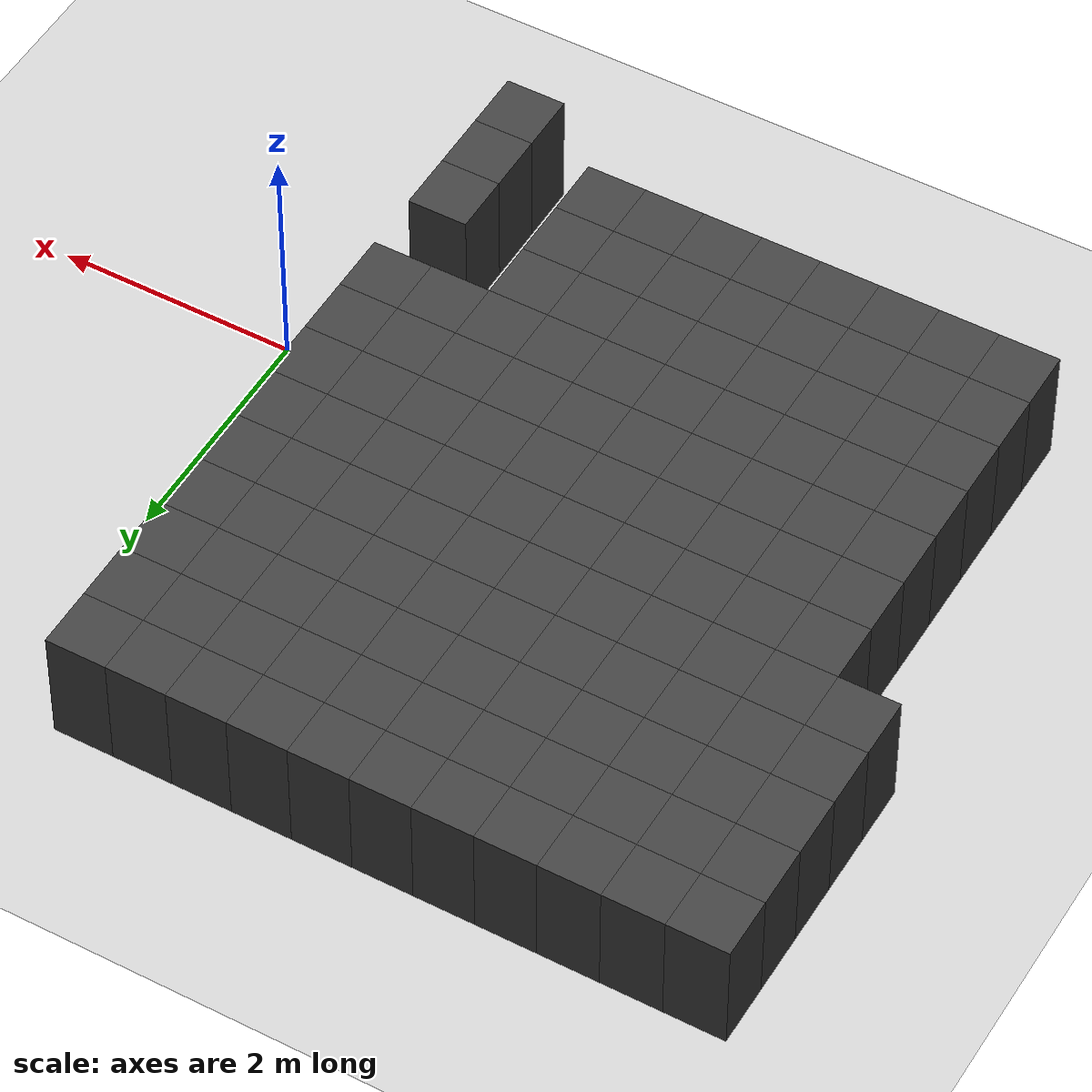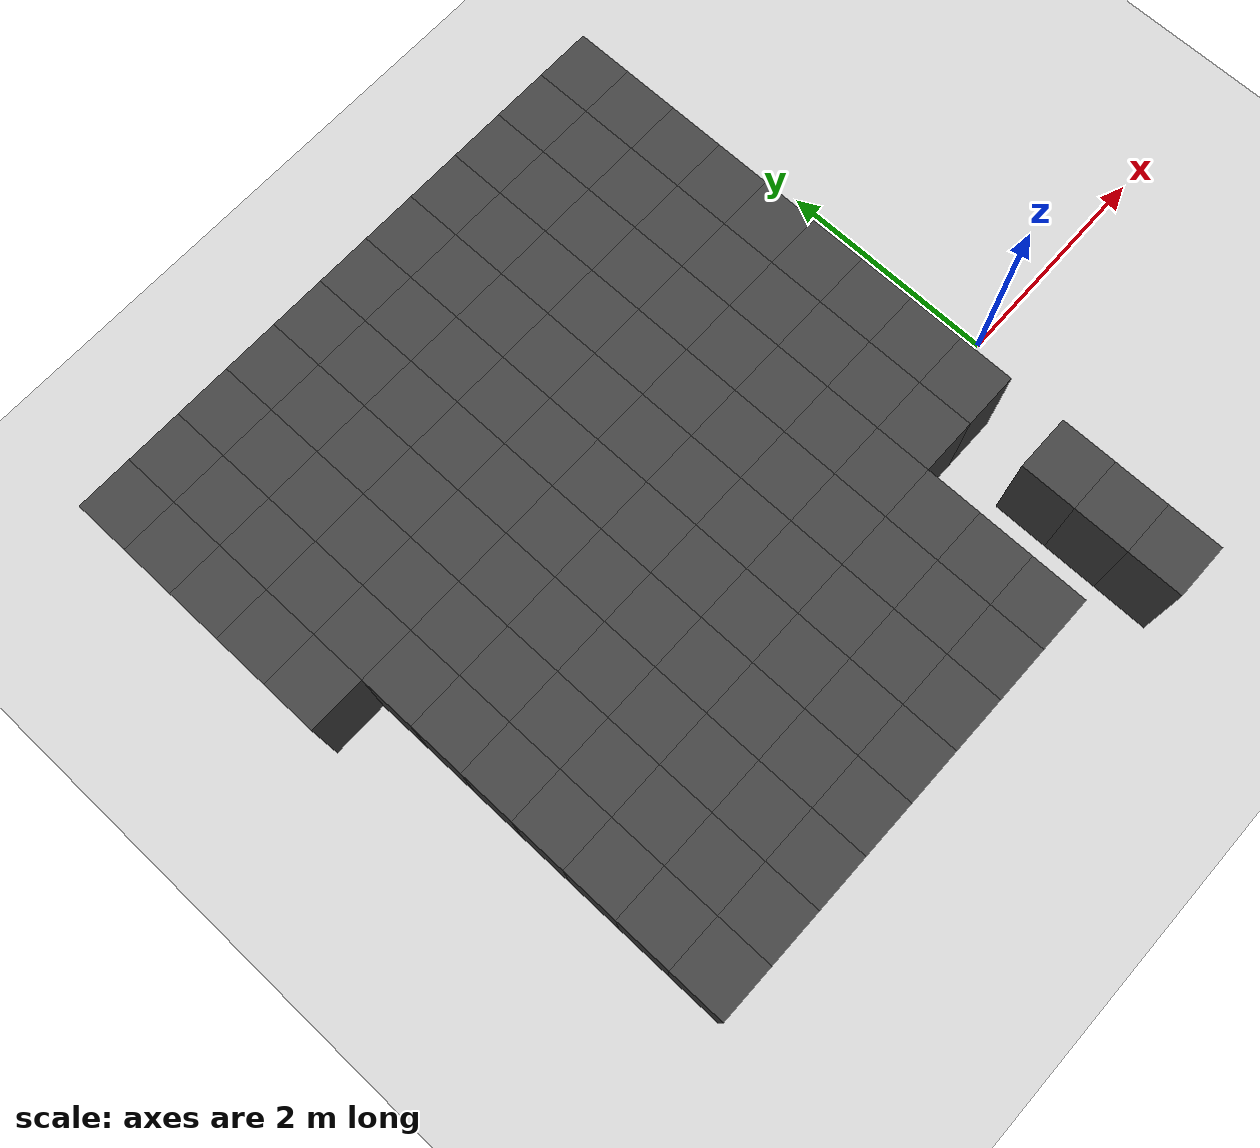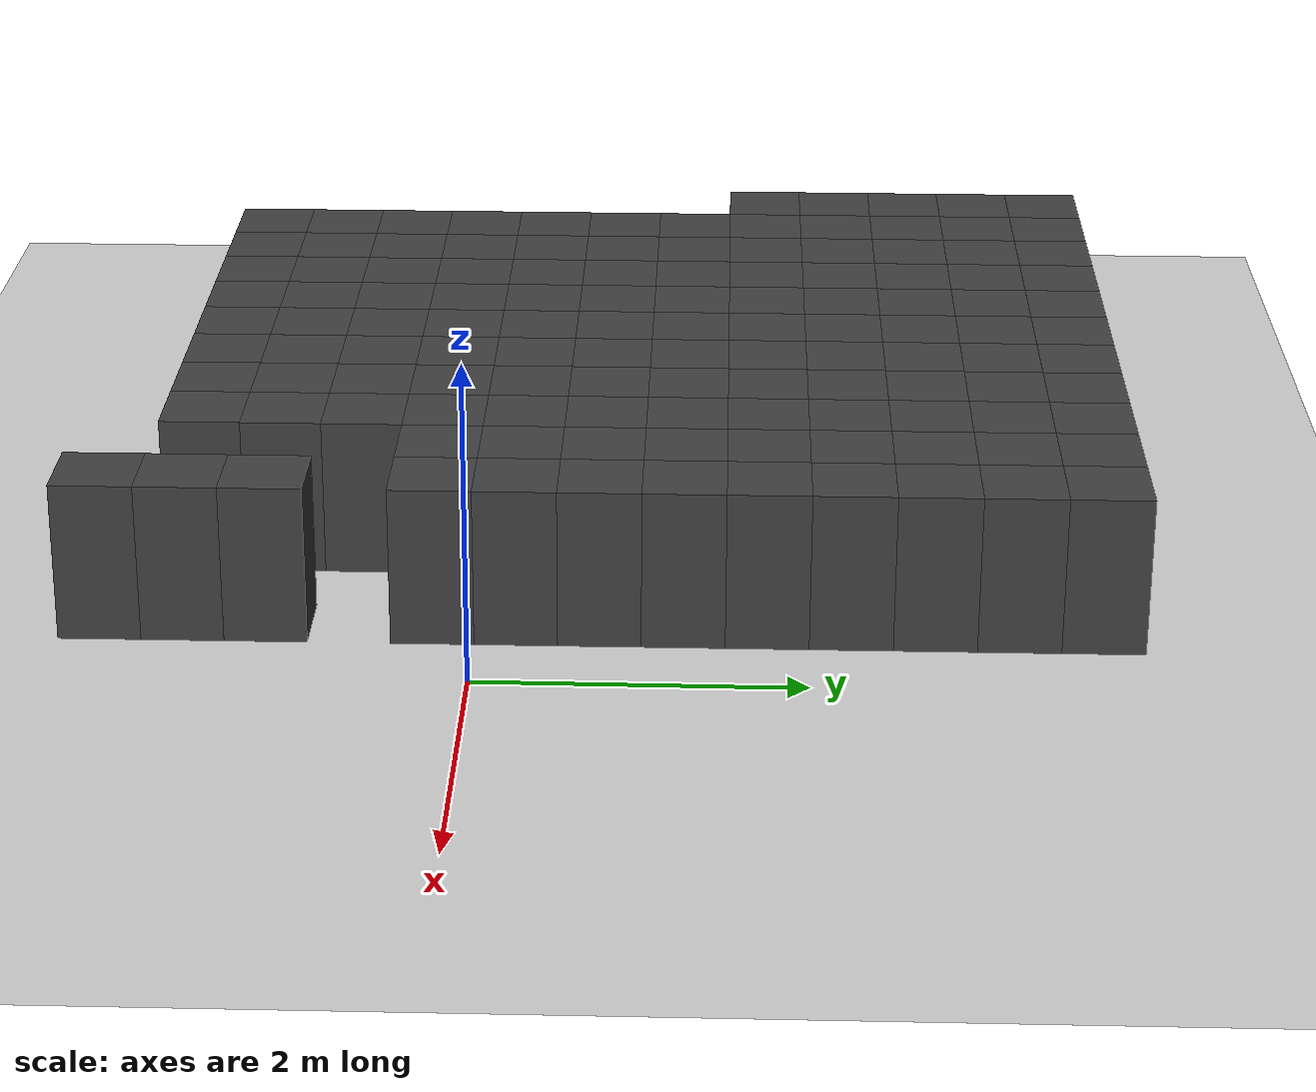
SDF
<sdf version="1.7">
 <world name="map_14547">
  <model name="ground_plane">
   <static>true</static>
   <link name="link">
    <collision name="collision">
     <geometry><plane><normal>0 0 1</normal><size>200 200</size></plane></geometry>
    </collision>
    <visual name="visual">
     <geometry><plane><normal>0 0 1</normal><size>200 200</size></plane></geometry>
     <material><ambient>0.8 0.8 0.8 1</ambient><diffuse>0.8 0.8 0.8 1</diffuse></material>
    </visual>
   </link>
  </model>
  <model name="maze_environment">
   <static>true</static>
   <link name="wall_535">
    <pose>-5.750 3.750 0.500 0 0 0</pose>
    <collision name="col"><geometry><box><size>0.5 0.5 1.0</size></box></geometry></collision>
    <visual name="vis">
     <geometry><box><size>0.5 0.5 1.0</size></box></geometry>
     <material><ambient>0.15 0.15 0.15 1</ambient><diffuse>0.25 0.25 0.25 1</diffuse></material>
    </visual>
   </link>
   <link name="wall_536">
    <pose>-5.250 3.750 0.500 0 0 0</pose>
    <collision name="col"><geometry><box><size>0.5 0.5 1.0</size></box></geometry></collision>
    <visual name="vis">
     <geometry><box><size>0.5 0.5 1.0</size></box></geometry>
     <material><ambient>0.15 0.15 0.15 1</ambient><diffuse>0.25 0.25 0.25 1</diffuse></material>
    </visual>
   </link>
   <link name="wall_537">
    <pose>-4.750 3.750 0.500 0 0 0</pose>
    <collision name="col"><geometry><box><size>0.5 0.5 1.0</size></box></geometry></collision>
    <visual name="vis">
     <geometry><box><size>0.5 0.5 1.0</size></box></geometry>
     <material><ambient>0.15 0.15 0.15 1</ambient><diffuse>0.25 0.25 0.25 1</diffuse></material>
    </visual>
   </link>
   <link name="wall_538">
    <pose>-4.250 3.750 0.500 0 0 0</pose>
    <collision name="col"><geometry><box><size>0.5 0.5 1.0</size></box></geometry></collision>
    <visual name="vis">
     <geometry><box><size>0.5 0.5 1.0</size></box></geometry>
     <material><ambient>0.15 0.15 0.15 1</ambient><diffuse>0.25 0.25 0.25 1</diffuse></material>
    </visual>
   </link>
   <link name="wall_539">
    <pose>-3.750 3.750 0.500 0 0 0</pose>
    <collision name="col"><geometry><box><size>0.5 0.5 1.0</size></box></geometry></collision>
    <visual name="vis">
     <geometry><box><size>0.5 0.5 1.0</size></box></geometry>
     <material><ambient>0.15 0.15 0.15 1</ambient><diffuse>0.25 0.25 0.25 1</diffuse></material>
    </visual>
   </link>
   <link name="wall_540">
    <pose>-3.250 3.750 0.500 0 0 0</pose>
    <collision name="col"><geometry><box><size>0.5 0.5 1.0</size></box></geometry></collision>
    <visual name="vis">
     <geometry><box><size>0.5 0.5 1.0</size></box></geometry>
     <material><ambient>0.15 0.15 0.15 1</ambient><diffuse>0.25 0.25 0.25 1</diffuse></material>
    </visual>
   </link>
   <link name="wall_541">
    <pose>-2.750 3.750 0.500 0 0 0</pose>
    <collision name="col"><geometry><box><size>0.5 0.5 1.0</size></box></geometry></collision>
    <visual name="vis">
     <geometry><box><size>0.5 0.5 1.0</size></box></geometry>
     <material><ambient>0.15 0.15 0.15 1</ambient><diffuse>0.25 0.25 0.25 1</diffuse></material>
    </visual>
   </link>
   <link name="wall_542">
    <pose>-2.250 3.750 0.500 0 0 0</pose>
    <collision name="col"><geometry><box><size>0.5 0.5 1.0</size></box></geometry></collision>
    <visual name="vis">
     <geometry><box><size>0.5 0.5 1.0</size></box></geometry>
     <material><ambient>0.15 0.15 0.15 1</ambient><diffuse>0.25 0.25 0.25 1</diffuse></material>
    </visual>
   </link>
   <link name="wall_543">
    <pose>-1.750 3.750 0.500 0 0 0</pose>
    <collision name="col"><geometry><box><size>0.5 0.5 1.0</size></box></geometry></collision>
    <visual name="vis">
     <geometry><box><size>0.5 0.5 1.0</size></box></geometry>
     <material><ambient>0.15 0.15 0.15 1</ambient><diffuse>0.25 0.25 0.25 1</diffuse></material>
    </visual>
   </link>
   <link name="wall_544">
    <pose>-1.250 3.750 0.500 0 0 0</pose>
    <collision name="col"><geometry><box><size>0.5 0.5 1.0</size></box></geometry></collision>
    <visual name="vis">
     <geometry><box><size>0.5 0.5 1.0</size></box></geometry>
     <material><ambient>0.15 0.15 0.15 1</ambient><diffuse>0.25 0.25 0.25 1</diffuse></material>
    </visual>
   </link>
   <link name="wall_545">
    <pose>-0.750 3.750 0.500 0 0 0</pose>
    <collision name="col"><geometry><box><size>0.5 0.5 1.0</size></box></geometry></collision>
    <visual name="vis">
     <geometry><box><size>0.5 0.5 1.0</size></box></geometry>
     <material><ambient>0.15 0.15 0.15 1</ambient><diffuse>0.25 0.25 0.25 1</diffuse></material>
    </visual>
   </link>
   <link name="wall_584">
    <pose>-5.750 3.250 0.500 0 0 0</pose>
    <collision name="col"><geometry><box><size>0.5 0.5 1.0</size></box></geometry></collision>
    <visual name="vis">
     <geometry><box><size>0.5 0.5 1.0</size></box></geometry>
     <material><ambient>0.15 0.15 0.15 1</ambient><diffuse>0.25 0.25 0.25 1</diffuse></material>
    </visual>
   </link>
   <link name="wall_585">
    <pose>-5.250 3.250 0.500 0 0 0</pose>
    <collision name="col"><geometry><box><size>0.5 0.5 1.0</size></box></geometry></collision>
    <visual name="vis">
     <geometry><box><size>0.5 0.5 1.0</size></box></geometry>
     <material><ambient>0.15 0.15 0.15 1</ambient><diffuse>0.25 0.25 0.25 1</diffuse></material>
    </visual>
   </link>
   <link name="wall_586">
    <pose>-4.750 3.250 0.500 0 0 0</pose>
    <collision name="col"><geometry><box><size>0.5 0.5 1.0</size></box></geometry></collision>
    <visual name="vis">
     <geometry><box><size>0.5 0.5 1.0</size></box></geometry>
     <material><ambient>0.15 0.15 0.15 1</ambient><diffuse>0.25 0.25 0.25 1</diffuse></material>
    </visual>
   </link>
   <link name="wall_587">
    <pose>-4.250 3.250 0.500 0 0 0</pose>
    <collision name="col"><geometry><box><size>0.5 0.5 1.0</size></box></geometry></collision>
    <visual name="vis">
     <geometry><box><size>0.5 0.5 1.0</size></box></geometry>
     <material><ambient>0.15 0.15 0.15 1</ambient><diffuse>0.25 0.25 0.25 1</diffuse></material>
    </visual>
   </link>
   <link name="wall_588">
    <pose>-3.750 3.250 0.500 0 0 0</pose>
    <collision name="col"><geometry><box><size>0.5 0.5 1.0</size></box></geometry></collision>
    <visual name="vis">
     <geometry><box><size>0.5 0.5 1.0</size></box></geometry>
     <material><ambient>0.15 0.15 0.15 1</ambient><diffuse>0.25 0.25 0.25 1</diffuse></material>
    </visual>
   </link>
   <link name="wall_589">
    <pose>-3.250 3.250 0.500 0 0 0</pose>
    <collision name="col"><geometry><box><size>0.5 0.5 1.0</size></box></geometry></collision>
    <visual name="vis">
     <geometry><box><size>0.5 0.5 1.0</size></box></geometry>
     <material><ambient>0.15 0.15 0.15 1</ambient><diffuse>0.25 0.25 0.25 1</diffuse></material>
    </visual>
   </link>
   <link name="wall_590">
    <pose>-2.750 3.250 0.500 0 0 0</pose>
    <collision name="col"><geometry><box><size>0.5 0.5 1.0</size></box></geometry></collision>
    <visual name="vis">
     <geometry><box><size>0.5 0.5 1.0</size></box></geometry>
     <material><ambient>0.15 0.15 0.15 1</ambient><diffuse>0.25 0.25 0.25 1</diffuse></material>
    </visual>
   </link>
   <link name="wall_591">
    <pose>-2.250 3.250 0.500 0 0 0</pose>
    <collision name="col"><geometry><box><size>0.5 0.5 1.0</size></box></geometry></collision>
    <visual name="vis">
     <geometry><box><size>0.5 0.5 1.0</size></box></geometry>
     <material><ambient>0.15 0.15 0.15 1</ambient><diffuse>0.25 0.25 0.25 1</diffuse></material>
    </visual>
   </link>
   <link name="wall_592">
    <pose>-1.750 3.250 0.500 0 0 0</pose>
    <collision name="col"><geometry><box><size>0.5 0.5 1.0</size></box></geometry></collision>
    <visual name="vis">
     <geometry><box><size>0.5 0.5 1.0</size></box></geometry>
     <material><ambient>0.15 0.15 0.15 1</ambient><diffuse>0.25 0.25 0.25 1</diffuse></material>
    </visual>
   </link>
   <link name="wall_593">
    <pose>-1.250 3.250 0.500 0 0 0</pose>
    <collision name="col"><geometry><box><size>0.5 0.5 1.0</size></box></geometry></collision>
    <visual name="vis">
     <geometry><box><size>0.5 0.5 1.0</size></box></geometry>
     <material><ambient>0.15 0.15 0.15 1</ambient><diffuse>0.25 0.25 0.25 1</diffuse></material>
    </visual>
   </link>
   <link name="wall_594">
    <pose>-0.750 3.250 0.500 0 0 0</pose>
    <collision name="col"><geometry><box><size>0.5 0.5 1.0</size></box></geometry></collision>
    <visual name="vis">
     <geometry><box><size>0.5 0.5 1.0</size></box></geometry>
     <material><ambient>0.15 0.15 0.15 1</ambient><diffuse>0.25 0.25 0.25 1</diffuse></material>
    </visual>
   </link>
   <link name="wall_628">
    <pose>-5.750 2.750 0.500 0 0 0</pose>
    <collision name="col"><geometry><box><size>0.5 0.5 1.0</size></box></geometry></collision>
    <visual name="vis">
     <geometry><box><size>0.5 0.5 1.0</size></box></geometry>
     <material><ambient>0.15 0.15 0.15 1</ambient><diffuse>0.25 0.25 0.25 1</diffuse></material>
    </visual>
   </link>
   <link name="wall_629">
    <pose>-5.250 2.750 0.500 0 0 0</pose>
    <collision name="col"><geometry><box><size>0.5 0.5 1.0</size></box></geometry></collision>
    <visual name="vis">
     <geometry><box><size>0.5 0.5 1.0</size></box></geometry>
     <material><ambient>0.15 0.15 0.15 1</ambient><diffuse>0.25 0.25 0.25 1</diffuse></material>
    </visual>
   </link>
   <link name="wall_630">
    <pose>-4.750 2.750 0.500 0 0 0</pose>
    <collision name="col"><geometry><box><size>0.5 0.5 1.0</size></box></geometry></collision>
    <visual name="vis">
     <geometry><box><size>0.5 0.5 1.0</size></box></geometry>
     <material><ambient>0.15 0.15 0.15 1</ambient><diffuse>0.25 0.25 0.25 1</diffuse></material>
    </visual>
   </link>
   <link name="wall_631">
    <pose>-4.250 2.750 0.500 0 0 0</pose>
    <collision name="col"><geometry><box><size>0.5 0.5 1.0</size></box></geometry></collision>
    <visual name="vis">
     <geometry><box><size>0.5 0.5 1.0</size></box></geometry>
     <material><ambient>0.15 0.15 0.15 1</ambient><diffuse>0.25 0.25 0.25 1</diffuse></material>
    </visual>
   </link>
   <link name="wall_632">
    <pose>-3.750 2.750 0.500 0 0 0</pose>
    <collision name="col"><geometry><box><size>0.5 0.5 1.0</size></box></geometry></collision>
    <visual name="vis">
     <geometry><box><size>0.5 0.5 1.0</size></box></geometry>
     <material><ambient>0.15 0.15 0.15 1</ambient><diffuse>0.25 0.25 0.25 1</diffuse></material>
    </visual>
   </link>
   <link name="wall_633">
    <pose>-3.250 2.750 0.500 0 0 0</pose>
    <collision name="col"><geometry><box><size>0.5 0.5 1.0</size></box></geometry></collision>
    <visual name="vis">
     <geometry><box><size>0.5 0.5 1.0</size></box></geometry>
     <material><ambient>0.15 0.15 0.15 1</ambient><diffuse>0.25 0.25 0.25 1</diffuse></material>
    </visual>
   </link>
   <link name="wall_634">
    <pose>-2.750 2.750 0.500 0 0 0</pose>
    <collision name="col"><geometry><box><size>0.5 0.5 1.0</size></box></geometry></collision>
    <visual name="vis">
     <geometry><box><size>0.5 0.5 1.0</size></box></geometry>
     <material><ambient>0.15 0.15 0.15 1</ambient><diffuse>0.25 0.25 0.25 1</diffuse></material>
    </visual>
   </link>
   <link name="wall_635">
    <pose>-2.250 2.750 0.500 0 0 0</pose>
    <collision name="col"><geometry><box><size>0.5 0.5 1.0</size></box></geometry></collision>
    <visual name="vis">
     <geometry><box><size>0.5 0.5 1.0</size></box></geometry>
     <material><ambient>0.15 0.15 0.15 1</ambient><diffuse>0.25 0.25 0.25 1</diffuse></material>
    </visual>
   </link>
   <link name="wall_636">
    <pose>-1.750 2.750 0.500 0 0 0</pose>
    <collision name="col"><geometry><box><size>0.5 0.5 1.0</size></box></geometry></collision>
    <visual name="vis">
     <geometry><box><size>0.5 0.5 1.0</size></box></geometry>
     <material><ambient>0.15 0.15 0.15 1</ambient><diffuse>0.25 0.25 0.25 1</diffuse></material>
    </visual>
   </link>
   <link name="wall_637">
    <pose>-1.250 2.750 0.500 0 0 0</pose>
    <collision name="col"><geometry><box><size>0.5 0.5 1.0</size></box></geometry></collision>
    <visual name="vis">
     <geometry><box><size>0.5 0.5 1.0</size></box></geometry>
     <material><ambient>0.15 0.15 0.15 1</ambient><diffuse>0.25 0.25 0.25 1</diffuse></material>
    </visual>
   </link>
   <link name="wall_638">
    <pose>-0.750 2.750 0.500 0 0 0</pose>
    <collision name="col"><geometry><box><size>0.5 0.5 1.0</size></box></geometry></collision>
    <visual name="vis">
     <geometry><box><size>0.5 0.5 1.0</size></box></geometry>
     <material><ambient>0.15 0.15 0.15 1</ambient><diffuse>0.25 0.25 0.25 1</diffuse></material>
    </visual>
   </link>
   <link name="wall_672">
    <pose>-5.750 2.250 0.500 0 0 0</pose>
    <collision name="col"><geometry><box><size>0.5 0.5 1.0</size></box></geometry></collision>
    <visual name="vis">
     <geometry><box><size>0.5 0.5 1.0</size></box></geometry>
     <material><ambient>0.15 0.15 0.15 1</ambient><diffuse>0.25 0.25 0.25 1</diffuse></material>
    </visual>
   </link>
   <link name="wall_673">
    <pose>-5.250 2.250 0.500 0 0 0</pose>
    <collision name="col"><geometry><box><size>0.5 0.5 1.0</size></box></geometry></collision>
    <visual name="vis">
     <geometry><box><size>0.5 0.5 1.0</size></box></geometry>
     <material><ambient>0.15 0.15 0.15 1</ambient><diffuse>0.25 0.25 0.25 1</diffuse></material>
    </visual>
   </link>
   <link name="wall_674">
    <pose>-4.750 2.250 0.500 0 0 0</pose>
    <collision name="col"><geometry><box><size>0.5 0.5 1.0</size></box></geometry></collision>
    <visual name="vis">
     <geometry><box><size>0.5 0.5 1.0</size></box></geometry>
     <material><ambient>0.15 0.15 0.15 1</ambient><diffuse>0.25 0.25 0.25 1</diffuse></material>
    </visual>
   </link>
   <link name="wall_675">
    <pose>-4.250 2.250 0.500 0 0 0</pose>
    <collision name="col"><geometry><box><size>0.5 0.5 1.0</size></box></geometry></collision>
    <visual name="vis">
     <geometry><box><size>0.5 0.5 1.0</size></box></geometry>
     <material><ambient>0.15 0.15 0.15 1</ambient><diffuse>0.25 0.25 0.25 1</diffuse></material>
    </visual>
   </link>
   <link name="wall_676">
    <pose>-3.750 2.250 0.500 0 0 0</pose>
    <collision name="col"><geometry><box><size>0.5 0.5 1.0</size></box></geometry></collision>
    <visual name="vis">
     <geometry><box><size>0.5 0.5 1.0</size></box></geometry>
     <material><ambient>0.15 0.15 0.15 1</ambient><diffuse>0.25 0.25 0.25 1</diffuse></material>
    </visual>
   </link>
   <link name="wall_677">
    <pose>-3.250 2.250 0.500 0 0 0</pose>
    <collision name="col"><geometry><box><size>0.5 0.5 1.0</size></box></geometry></collision>
    <visual name="vis">
     <geometry><box><size>0.5 0.5 1.0</size></box></geometry>
     <material><ambient>0.15 0.15 0.15 1</ambient><diffuse>0.25 0.25 0.25 1</diffuse></material>
    </visual>
   </link>
   <link name="wall_678">
    <pose>-2.750 2.250 0.500 0 0 0</pose>
    <collision name="col"><geometry><box><size>0.5 0.5 1.0</size></box></geometry></collision>
    <visual name="vis">
     <geometry><box><size>0.5 0.5 1.0</size></box></geometry>
     <material><ambient>0.15 0.15 0.15 1</ambient><diffuse>0.25 0.25 0.25 1</diffuse></material>
    </visual>
   </link>
   <link name="wall_679">
    <pose>-2.250 2.250 0.500 0 0 0</pose>
    <collision name="col"><geometry><box><size>0.5 0.5 1.0</size></box></geometry></collision>
    <visual name="vis">
     <geometry><box><size>0.5 0.5 1.0</size></box></geometry>
     <material><ambient>0.15 0.15 0.15 1</ambient><diffuse>0.25 0.25 0.25 1</diffuse></material>
    </visual>
   </link>
   <link name="wall_680">
    <pose>-1.750 2.250 0.500 0 0 0</pose>
    <collision name="col"><geometry><box><size>0.5 0.5 1.0</size></box></geometry></collision>
    <visual name="vis">
     <geometry><box><size>0.5 0.5 1.0</size></box></geometry>
     <material><ambient>0.15 0.15 0.15 1</ambient><diffuse>0.25 0.25 0.25 1</diffuse></material>
    </visual>
   </link>
   <link name="wall_681">
    <pose>-1.250 2.250 0.500 0 0 0</pose>
    <collision name="col"><geometry><box><size>0.5 0.5 1.0</size></box></geometry></collision>
    <visual name="vis">
     <geometry><box><size>0.5 0.5 1.0</size></box></geometry>
     <material><ambient>0.15 0.15 0.15 1</ambient><diffuse>0.25 0.25 0.25 1</diffuse></material>
    </visual>
   </link>
   <link name="wall_682">
    <pose>-0.750 2.250 0.500 0 0 0</pose>
    <collision name="col"><geometry><box><size>0.5 0.5 1.0</size></box></geometry></collision>
    <visual name="vis">
     <geometry><box><size>0.5 0.5 1.0</size></box></geometry>
     <material><ambient>0.15 0.15 0.15 1</ambient><diffuse>0.25 0.25 0.25 1</diffuse></material>
    </visual>
   </link>
   <link name="wall_716">
    <pose>-5.750 1.750 0.500 0 0 0</pose>
    <collision name="col"><geometry><box><size>0.5 0.5 1.0</size></box></geometry></collision>
    <visual name="vis">
     <geometry><box><size>0.5 0.5 1.0</size></box></geometry>
     <material><ambient>0.15 0.15 0.15 1</ambient><diffuse>0.25 0.25 0.25 1</diffuse></material>
    </visual>
   </link>
   <link name="wall_717">
    <pose>-5.250 1.750 0.500 0 0 0</pose>
    <collision name="col"><geometry><box><size>0.5 0.5 1.0</size></box></geometry></collision>
    <visual name="vis">
     <geometry><box><size>0.5 0.5 1.0</size></box></geometry>
     <material><ambient>0.15 0.15 0.15 1</ambient><diffuse>0.25 0.25 0.25 1</diffuse></material>
    </visual>
   </link>
   <link name="wall_718">
    <pose>-4.750 1.750 0.500 0 0 0</pose>
    <collision name="col"><geometry><box><size>0.5 0.5 1.0</size></box></geometry></collision>
    <visual name="vis">
     <geometry><box><size>0.5 0.5 1.0</size></box></geometry>
     <material><ambient>0.15 0.15 0.15 1</ambient><diffuse>0.25 0.25 0.25 1</diffuse></material>
    </visual>
   </link>
   <link name="wall_719">
    <pose>-4.250 1.750 0.500 0 0 0</pose>
    <collision name="col"><geometry><box><size>0.5 0.5 1.0</size></box></geometry></collision>
    <visual name="vis">
     <geometry><box><size>0.5 0.5 1.0</size></box></geometry>
     <material><ambient>0.15 0.15 0.15 1</ambient><diffuse>0.25 0.25 0.25 1</diffuse></material>
    </visual>
   </link>
   <link name="wall_720">
    <pose>-3.750 1.750 0.500 0 0 0</pose>
    <collision name="col"><geometry><box><size>0.5 0.5 1.0</size></box></geometry></collision>
    <visual name="vis">
     <geometry><box><size>0.5 0.5 1.0</size></box></geometry>
     <material><ambient>0.15 0.15 0.15 1</ambient><diffuse>0.25 0.25 0.25 1</diffuse></material>
    </visual>
   </link>
   <link name="wall_721">
    <pose>-3.250 1.750 0.500 0 0 0</pose>
    <collision name="col"><geometry><box><size>0.5 0.5 1.0</size></box></geometry></collision>
    <visual name="vis">
     <geometry><box><size>0.5 0.5 1.0</size></box></geometry>
     <material><ambient>0.15 0.15 0.15 1</ambient><diffuse>0.25 0.25 0.25 1</diffuse></material>
    </visual>
   </link>
   <link name="wall_722">
    <pose>-2.750 1.750 0.500 0 0 0</pose>
    <collision name="col"><geometry><box><size>0.5 0.5 1.0</size></box></geometry></collision>
    <visual name="vis">
     <geometry><box><size>0.5 0.5 1.0</size></box></geometry>
     <material><ambient>0.15 0.15 0.15 1</ambient><diffuse>0.25 0.25 0.25 1</diffuse></material>
    </visual>
   </link>
   <link name="wall_723">
    <pose>-2.250 1.750 0.500 0 0 0</pose>
    <collision name="col"><geometry><box><size>0.5 0.5 1.0</size></box></geometry></collision>
    <visual name="vis">
     <geometry><box><size>0.5 0.5 1.0</size></box></geometry>
     <material><ambient>0.15 0.15 0.15 1</ambient><diffuse>0.25 0.25 0.25 1</diffuse></material>
    </visual>
   </link>
   <link name="wall_724">
    <pose>-1.750 1.750 0.500 0 0 0</pose>
    <collision name="col"><geometry><box><size>0.5 0.5 1.0</size></box></geometry></collision>
    <visual name="vis">
     <geometry><box><size>0.5 0.5 1.0</size></box></geometry>
     <material><ambient>0.15 0.15 0.15 1</ambient><diffuse>0.25 0.25 0.25 1</diffuse></material>
    </visual>
   </link>
   <link name="wall_725">
    <pose>-1.250 1.750 0.500 0 0 0</pose>
    <collision name="col"><geometry><box><size>0.5 0.5 1.0</size></box></geometry></collision>
    <visual name="vis">
     <geometry><box><size>0.5 0.5 1.0</size></box></geometry>
     <material><ambient>0.15 0.15 0.15 1</ambient><diffuse>0.25 0.25 0.25 1</diffuse></material>
    </visual>
   </link>
   <link name="wall_726">
    <pose>-0.750 1.750 0.500 0 0 0</pose>
    <collision name="col"><geometry><box><size>0.5 0.5 1.0</size></box></geometry></collision>
    <visual name="vis">
     <geometry><box><size>0.5 0.5 1.0</size></box></geometry>
     <material><ambient>0.15 0.15 0.15 1</ambient><diffuse>0.25 0.25 0.25 1</diffuse></material>
    </visual>
   </link>
   <link name="wall_762">
    <pose>-5.250 1.250 0.500 0 0 0</pose>
    <collision name="col"><geometry><box><size>0.5 0.5 1.0</size></box></geometry></collision>
    <visual name="vis">
     <geometry><box><size>0.5 0.5 1.0</size></box></geometry>
     <material><ambient>0.15 0.15 0.15 1</ambient><diffuse>0.25 0.25 0.25 1</diffuse></material>
    </visual>
   </link>
   <link name="wall_763">
    <pose>-4.750 1.250 0.500 0 0 0</pose>
    <collision name="col"><geometry><box><size>0.5 0.5 1.0</size></box></geometry></collision>
    <visual name="vis">
     <geometry><box><size>0.5 0.5 1.0</size></box></geometry>
     <material><ambient>0.15 0.15 0.15 1</ambient><diffuse>0.25 0.25 0.25 1</diffuse></material>
    </visual>
   </link>
   <link name="wall_764">
    <pose>-4.250 1.250 0.500 0 0 0</pose>
    <collision name="col"><geometry><box><size>0.5 0.5 1.0</size></box></geometry></collision>
    <visual name="vis">
     <geometry><box><size>0.5 0.5 1.0</size></box></geometry>
     <material><ambient>0.15 0.15 0.15 1</ambient><diffuse>0.25 0.25 0.25 1</diffuse></material>
    </visual>
   </link>
   <link name="wall_765">
    <pose>-3.750 1.250 0.500 0 0 0</pose>
    <collision name="col"><geometry><box><size>0.5 0.5 1.0</size></box></geometry></collision>
    <visual name="vis">
     <geometry><box><size>0.5 0.5 1.0</size></box></geometry>
     <material><ambient>0.15 0.15 0.15 1</ambient><diffuse>0.25 0.25 0.25 1</diffuse></material>
    </visual>
   </link>
   <link name="wall_766">
    <pose>-3.250 1.250 0.500 0 0 0</pose>
    <collision name="col"><geometry><box><size>0.5 0.5 1.0</size></box></geometry></collision>
    <visual name="vis">
     <geometry><box><size>0.5 0.5 1.0</size></box></geometry>
     <material><ambient>0.15 0.15 0.15 1</ambient><diffuse>0.25 0.25 0.25 1</diffuse></material>
    </visual>
   </link>
   <link name="wall_767">
    <pose>-2.750 1.250 0.500 0 0 0</pose>
    <collision name="col"><geometry><box><size>0.5 0.5 1.0</size></box></geometry></collision>
    <visual name="vis">
     <geometry><box><size>0.5 0.5 1.0</size></box></geometry>
     <material><ambient>0.15 0.15 0.15 1</ambient><diffuse>0.25 0.25 0.25 1</diffuse></material>
    </visual>
   </link>
   <link name="wall_768">
    <pose>-2.250 1.250 0.500 0 0 0</pose>
    <collision name="col"><geometry><box><size>0.5 0.5 1.0</size></box></geometry></collision>
    <visual name="vis">
     <geometry><box><size>0.5 0.5 1.0</size></box></geometry>
     <material><ambient>0.15 0.15 0.15 1</ambient><diffuse>0.25 0.25 0.25 1</diffuse></material>
    </visual>
   </link>
   <link name="wall_769">
    <pose>-1.750 1.250 0.500 0 0 0</pose>
    <collision name="col"><geometry><box><size>0.5 0.5 1.0</size></box></geometry></collision>
    <visual name="vis">
     <geometry><box><size>0.5 0.5 1.0</size></box></geometry>
     <material><ambient>0.15 0.15 0.15 1</ambient><diffuse>0.25 0.25 0.25 1</diffuse></material>
    </visual>
   </link>
   <link name="wall_770">
    <pose>-1.250 1.250 0.500 0 0 0</pose>
    <collision name="col"><geometry><box><size>0.5 0.5 1.0</size></box></geometry></collision>
    <visual name="vis">
     <geometry><box><size>0.5 0.5 1.0</size></box></geometry>
     <material><ambient>0.15 0.15 0.15 1</ambient><diffuse>0.25 0.25 0.25 1</diffuse></material>
    </visual>
   </link>
   <link name="wall_771">
    <pose>-0.750 1.250 0.500 0 0 0</pose>
    <collision name="col"><geometry><box><size>0.5 0.5 1.0</size></box></geometry></collision>
    <visual name="vis">
     <geometry><box><size>0.5 0.5 1.0</size></box></geometry>
     <material><ambient>0.15 0.15 0.15 1</ambient><diffuse>0.25 0.25 0.25 1</diffuse></material>
    </visual>
   </link>
   <link name="wall_807">
    <pose>-5.250 0.750 0.500 0 0 0</pose>
    <collision name="col"><geometry><box><size>0.5 0.5 1.0</size></box></geometry></collision>
    <visual name="vis">
     <geometry><box><size>0.5 0.5 1.0</size></box></geometry>
     <material><ambient>0.15 0.15 0.15 1</ambient><diffuse>0.25 0.25 0.25 1</diffuse></material>
    </visual>
   </link>
   <link name="wall_808">
    <pose>-4.750 0.750 0.500 0 0 0</pose>
    <collision name="col"><geometry><box><size>0.5 0.5 1.0</size></box></geometry></collision>
    <visual name="vis">
     <geometry><box><size>0.5 0.5 1.0</size></box></geometry>
     <material><ambient>0.15 0.15 0.15 1</ambient><diffuse>0.25 0.25 0.25 1</diffuse></material>
    </visual>
   </link>
   <link name="wall_809">
    <pose>-4.250 0.750 0.500 0 0 0</pose>
    <collision name="col"><geometry><box><size>0.5 0.5 1.0</size></box></geometry></collision>
    <visual name="vis">
     <geometry><box><size>0.5 0.5 1.0</size></box></geometry>
     <material><ambient>0.15 0.15 0.15 1</ambient><diffuse>0.25 0.25 0.25 1</diffuse></material>
    </visual>
   </link>
   <link name="wall_810">
    <pose>-3.750 0.750 0.500 0 0 0</pose>
    <collision name="col"><geometry><box><size>0.5 0.5 1.0</size></box></geometry></collision>
    <visual name="vis">
     <geometry><box><size>0.5 0.5 1.0</size></box></geometry>
     <material><ambient>0.15 0.15 0.15 1</ambient><diffuse>0.25 0.25 0.25 1</diffuse></material>
    </visual>
   </link>
   <link name="wall_811">
    <pose>-3.250 0.750 0.500 0 0 0</pose>
    <collision name="col"><geometry><box><size>0.5 0.5 1.0</size></box></geometry></collision>
    <visual name="vis">
     <geometry><box><size>0.5 0.5 1.0</size></box></geometry>
     <material><ambient>0.15 0.15 0.15 1</ambient><diffuse>0.25 0.25 0.25 1</diffuse></material>
    </visual>
   </link>
   <link name="wall_812">
    <pose>-2.750 0.750 0.500 0 0 0</pose>
    <collision name="col"><geometry><box><size>0.5 0.5 1.0</size></box></geometry></collision>
    <visual name="vis">
     <geometry><box><size>0.5 0.5 1.0</size></box></geometry>
     <material><ambient>0.15 0.15 0.15 1</ambient><diffuse>0.25 0.25 0.25 1</diffuse></material>
    </visual>
   </link>
   <link name="wall_813">
    <pose>-2.250 0.750 0.500 0 0 0</pose>
    <collision name="col"><geometry><box><size>0.5 0.5 1.0</size></box></geometry></collision>
    <visual name="vis">
     <geometry><box><size>0.5 0.5 1.0</size></box></geometry>
     <material><ambient>0.15 0.15 0.15 1</ambient><diffuse>0.25 0.25 0.25 1</diffuse></material>
    </visual>
   </link>
   <link name="wall_814">
    <pose>-1.750 0.750 0.500 0 0 0</pose>
    <collision name="col"><geometry><box><size>0.5 0.5 1.0</size></box></geometry></collision>
    <visual name="vis">
     <geometry><box><size>0.5 0.5 1.0</size></box></geometry>
     <material><ambient>0.15 0.15 0.15 1</ambient><diffuse>0.25 0.25 0.25 1</diffuse></material>
    </visual>
   </link>
   <link name="wall_815">
    <pose>-1.250 0.750 0.500 0 0 0</pose>
    <collision name="col"><geometry><box><size>0.5 0.5 1.0</size></box></geometry></collision>
    <visual name="vis">
     <geometry><box><size>0.5 0.5 1.0</size></box></geometry>
     <material><ambient>0.15 0.15 0.15 1</ambient><diffuse>0.25 0.25 0.25 1</diffuse></material>
    </visual>
   </link>
   <link name="wall_816">
    <pose>-0.750 0.750 0.500 0 0 0</pose>
    <collision name="col"><geometry><box><size>0.5 0.5 1.0</size></box></geometry></collision>
    <visual name="vis">
     <geometry><box><size>0.5 0.5 1.0</size></box></geometry>
     <material><ambient>0.15 0.15 0.15 1</ambient><diffuse>0.25 0.25 0.25 1</diffuse></material>
    </visual>
   </link>
   <link name="wall_856">
    <pose>-5.250 0.250 0.500 0 0 0</pose>
    <collision name="col"><geometry><box><size>0.5 0.5 1.0</size></box></geometry></collision>
    <visual name="vis">
     <geometry><box><size>0.5 0.5 1.0</size></box></geometry>
     <material><ambient>0.15 0.15 0.15 1</ambient><diffuse>0.25 0.25 0.25 1</diffuse></material>
    </visual>
   </link>
   <link name="wall_857">
    <pose>-4.750 0.250 0.500 0 0 0</pose>
    <collision name="col"><geometry><box><size>0.5 0.5 1.0</size></box></geometry></collision>
    <visual name="vis">
     <geometry><box><size>0.5 0.5 1.0</size></box></geometry>
     <material><ambient>0.15 0.15 0.15 1</ambient><diffuse>0.25 0.25 0.25 1</diffuse></material>
    </visual>
   </link>
   <link name="wall_858">
    <pose>-4.250 0.250 0.500 0 0 0</pose>
    <collision name="col"><geometry><box><size>0.5 0.5 1.0</size></box></geometry></collision>
    <visual name="vis">
     <geometry><box><size>0.5 0.5 1.0</size></box></geometry>
     <material><ambient>0.15 0.15 0.15 1</ambient><diffuse>0.25 0.25 0.25 1</diffuse></material>
    </visual>
   </link>
   <link name="wall_859">
    <pose>-3.750 0.250 0.500 0 0 0</pose>
    <collision name="col"><geometry><box><size>0.5 0.5 1.0</size></box></geometry></collision>
    <visual name="vis">
     <geometry><box><size>0.5 0.5 1.0</size></box></geometry>
     <material><ambient>0.15 0.15 0.15 1</ambient><diffuse>0.25 0.25 0.25 1</diffuse></material>
    </visual>
   </link>
   <link name="wall_860">
    <pose>-3.250 0.250 0.500 0 0 0</pose>
    <collision name="col"><geometry><box><size>0.5 0.5 1.0</size></box></geometry></collision>
    <visual name="vis">
     <geometry><box><size>0.5 0.5 1.0</size></box></geometry>
     <material><ambient>0.15 0.15 0.15 1</ambient><diffuse>0.25 0.25 0.25 1</diffuse></material>
    </visual>
   </link>
   <link name="wall_861">
    <pose>-2.750 0.250 0.500 0 0 0</pose>
    <collision name="col"><geometry><box><size>0.5 0.5 1.0</size></box></geometry></collision>
    <visual name="vis">
     <geometry><box><size>0.5 0.5 1.0</size></box></geometry>
     <material><ambient>0.15 0.15 0.15 1</ambient><diffuse>0.25 0.25 0.25 1</diffuse></material>
    </visual>
   </link>
   <link name="wall_862">
    <pose>-2.250 0.250 0.500 0 0 0</pose>
    <collision name="col"><geometry><box><size>0.5 0.5 1.0</size></box></geometry></collision>
    <visual name="vis">
     <geometry><box><size>0.5 0.5 1.0</size></box></geometry>
     <material><ambient>0.15 0.15 0.15 1</ambient><diffuse>0.25 0.25 0.25 1</diffuse></material>
    </visual>
   </link>
   <link name="wall_863">
    <pose>-1.750 0.250 0.500 0 0 0</pose>
    <collision name="col"><geometry><box><size>0.5 0.5 1.0</size></box></geometry></collision>
    <visual name="vis">
     <geometry><box><size>0.5 0.5 1.0</size></box></geometry>
     <material><ambient>0.15 0.15 0.15 1</ambient><diffuse>0.25 0.25 0.25 1</diffuse></material>
    </visual>
   </link>
   <link name="wall_864">
    <pose>-1.250 0.250 0.500 0 0 0</pose>
    <collision name="col"><geometry><box><size>0.5 0.5 1.0</size></box></geometry></collision>
    <visual name="vis">
     <geometry><box><size>0.5 0.5 1.0</size></box></geometry>
     <material><ambient>0.15 0.15 0.15 1</ambient><diffuse>0.25 0.25 0.25 1</diffuse></material>
    </visual>
   </link>
   <link name="wall_865">
    <pose>-0.750 0.250 0.500 0 0 0</pose>
    <collision name="col"><geometry><box><size>0.5 0.5 1.0</size></box></geometry></collision>
    <visual name="vis">
     <geometry><box><size>0.5 0.5 1.0</size></box></geometry>
     <material><ambient>0.15 0.15 0.15 1</ambient><diffuse>0.25 0.25 0.25 1</diffuse></material>
    </visual>
   </link>
   <link name="wall_897">
    <pose>-5.250 -0.250 0.500 0 0 0</pose>
    <collision name="col"><geometry><box><size>0.5 0.5 1.0</size></box></geometry></collision>
    <visual name="vis">
     <geometry><box><size>0.5 0.5 1.0</size></box></geometry>
     <material><ambient>0.15 0.15 0.15 1</ambient><diffuse>0.25 0.25 0.25 1</diffuse></material>
    </visual>
   </link>
   <link name="wall_898">
    <pose>-4.750 -0.250 0.500 0 0 0</pose>
    <collision name="col"><geometry><box><size>0.5 0.5 1.0</size></box></geometry></collision>
    <visual name="vis">
     <geometry><box><size>0.5 0.5 1.0</size></box></geometry>
     <material><ambient>0.15 0.15 0.15 1</ambient><diffuse>0.25 0.25 0.25 1</diffuse></material>
    </visual>
   </link>
   <link name="wall_899">
    <pose>-4.250 -0.250 0.500 0 0 0</pose>
    <collision name="col"><geometry><box><size>0.5 0.5 1.0</size></box></geometry></collision>
    <visual name="vis">
     <geometry><box><size>0.5 0.5 1.0</size></box></geometry>
     <material><ambient>0.15 0.15 0.15 1</ambient><diffuse>0.25 0.25 0.25 1</diffuse></material>
    </visual>
   </link>
   <link name="wall_900">
    <pose>-3.750 -0.250 0.500 0 0 0</pose>
    <collision name="col"><geometry><box><size>0.5 0.5 1.0</size></box></geometry></collision>
    <visual name="vis">
     <geometry><box><size>0.5 0.5 1.0</size></box></geometry>
     <material><ambient>0.15 0.15 0.15 1</ambient><diffuse>0.25 0.25 0.25 1</diffuse></material>
    </visual>
   </link>
   <link name="wall_901">
    <pose>-3.250 -0.250 0.500 0 0 0</pose>
    <collision name="col"><geometry><box><size>0.5 0.5 1.0</size></box></geometry></collision>
    <visual name="vis">
     <geometry><box><size>0.5 0.5 1.0</size></box></geometry>
     <material><ambient>0.15 0.15 0.15 1</ambient><diffuse>0.25 0.25 0.25 1</diffuse></material>
    </visual>
   </link>
   <link name="wall_902">
    <pose>-2.750 -0.250 0.500 0 0 0</pose>
    <collision name="col"><geometry><box><size>0.5 0.5 1.0</size></box></geometry></collision>
    <visual name="vis">
     <geometry><box><size>0.5 0.5 1.0</size></box></geometry>
     <material><ambient>0.15 0.15 0.15 1</ambient><diffuse>0.25 0.25 0.25 1</diffuse></material>
    </visual>
   </link>
   <link name="wall_903">
    <pose>-2.250 -0.250 0.500 0 0 0</pose>
    <collision name="col"><geometry><box><size>0.5 0.5 1.0</size></box></geometry></collision>
    <visual name="vis">
     <geometry><box><size>0.5 0.5 1.0</size></box></geometry>
     <material><ambient>0.15 0.15 0.15 1</ambient><diffuse>0.25 0.25 0.25 1</diffuse></material>
    </visual>
   </link>
   <link name="wall_904">
    <pose>-1.750 -0.250 0.500 0 0 0</pose>
    <collision name="col"><geometry><box><size>0.5 0.5 1.0</size></box></geometry></collision>
    <visual name="vis">
     <geometry><box><size>0.5 0.5 1.0</size></box></geometry>
     <material><ambient>0.15 0.15 0.15 1</ambient><diffuse>0.25 0.25 0.25 1</diffuse></material>
    </visual>
   </link>
   <link name="wall_905">
    <pose>-1.250 -0.250 0.500 0 0 0</pose>
    <collision name="col"><geometry><box><size>0.5 0.5 1.0</size></box></geometry></collision>
    <visual name="vis">
     <geometry><box><size>0.5 0.5 1.0</size></box></geometry>
     <material><ambient>0.15 0.15 0.15 1</ambient><diffuse>0.25 0.25 0.25 1</diffuse></material>
    </visual>
   </link>
   <link name="wall_906">
    <pose>-0.750 -0.250 0.500 0 0 0</pose>
    <collision name="col"><geometry><box><size>0.5 0.5 1.0</size></box></geometry></collision>
    <visual name="vis">
     <geometry><box><size>0.5 0.5 1.0</size></box></geometry>
     <material><ambient>0.15 0.15 0.15 1</ambient><diffuse>0.25 0.25 0.25 1</diffuse></material>
    </visual>
   </link>
   <link name="wall_938">
    <pose>-5.250 -0.750 0.500 0 0 0</pose>
    <collision name="col"><geometry><box><size>0.5 0.5 1.0</size></box></geometry></collision>
    <visual name="vis">
     <geometry><box><size>0.5 0.5 1.0</size></box></geometry>
     <material><ambient>0.15 0.15 0.15 1</ambient><diffuse>0.25 0.25 0.25 1</diffuse></material>
    </visual>
   </link>
   <link name="wall_939">
    <pose>-4.750 -0.750 0.500 0 0 0</pose>
    <collision name="col"><geometry><box><size>0.5 0.5 1.0</size></box></geometry></collision>
    <visual name="vis">
     <geometry><box><size>0.5 0.5 1.0</size></box></geometry>
     <material><ambient>0.15 0.15 0.15 1</ambient><diffuse>0.25 0.25 0.25 1</diffuse></material>
    </visual>
   </link>
   <link name="wall_940">
    <pose>-4.250 -0.750 0.500 0 0 0</pose>
    <collision name="col"><geometry><box><size>0.5 0.5 1.0</size></box></geometry></collision>
    <visual name="vis">
     <geometry><box><size>0.5 0.5 1.0</size></box></geometry>
     <material><ambient>0.15 0.15 0.15 1</ambient><diffuse>0.25 0.25 0.25 1</diffuse></material>
    </visual>
   </link>
   <link name="wall_941">
    <pose>-3.750 -0.750 0.500 0 0 0</pose>
    <collision name="col"><geometry><box><size>0.5 0.5 1.0</size></box></geometry></collision>
    <visual name="vis">
     <geometry><box><size>0.5 0.5 1.0</size></box></geometry>
     <material><ambient>0.15 0.15 0.15 1</ambient><diffuse>0.25 0.25 0.25 1</diffuse></material>
    </visual>
   </link>
   <link name="wall_942">
    <pose>-3.250 -0.750 0.500 0 0 0</pose>
    <collision name="col"><geometry><box><size>0.5 0.5 1.0</size></box></geometry></collision>
    <visual name="vis">
     <geometry><box><size>0.5 0.5 1.0</size></box></geometry>
     <material><ambient>0.15 0.15 0.15 1</ambient><diffuse>0.25 0.25 0.25 1</diffuse></material>
    </visual>
   </link>
   <link name="wall_943">
    <pose>-2.750 -0.750 0.500 0 0 0</pose>
    <collision name="col"><geometry><box><size>0.5 0.5 1.0</size></box></geometry></collision>
    <visual name="vis">
     <geometry><box><size>0.5 0.5 1.0</size></box></geometry>
     <material><ambient>0.15 0.15 0.15 1</ambient><diffuse>0.25 0.25 0.25 1</diffuse></material>
    </visual>
   </link>
   <link name="wall_944">
    <pose>-2.250 -0.750 0.500 0 0 0</pose>
    <collision name="col"><geometry><box><size>0.5 0.5 1.0</size></box></geometry></collision>
    <visual name="vis">
     <geometry><box><size>0.5 0.5 1.0</size></box></geometry>
     <material><ambient>0.15 0.15 0.15 1</ambient><diffuse>0.25 0.25 0.25 1</diffuse></material>
    </visual>
   </link>
   <link name="wall_945">
    <pose>-1.750 -0.750 0.500 0 0 0</pose>
    <collision name="col"><geometry><box><size>0.5 0.5 1.0</size></box></geometry></collision>
    <visual name="vis">
     <geometry><box><size>0.5 0.5 1.0</size></box></geometry>
     <material><ambient>0.15 0.15 0.15 1</ambient><diffuse>0.25 0.25 0.25 1</diffuse></material>
    </visual>
   </link>
   <link name="wall_977">
    <pose>-5.250 -1.250 0.500 0 0 0</pose>
    <collision name="col"><geometry><box><size>0.5 0.5 1.0</size></box></geometry></collision>
    <visual name="vis">
     <geometry><box><size>0.5 0.5 1.0</size></box></geometry>
     <material><ambient>0.15 0.15 0.15 1</ambient><diffuse>0.25 0.25 0.25 1</diffuse></material>
    </visual>
   </link>
   <link name="wall_978">
    <pose>-4.750 -1.250 0.500 0 0 0</pose>
    <collision name="col"><geometry><box><size>0.5 0.5 1.0</size></box></geometry></collision>
    <visual name="vis">
     <geometry><box><size>0.5 0.5 1.0</size></box></geometry>
     <material><ambient>0.15 0.15 0.15 1</ambient><diffuse>0.25 0.25 0.25 1</diffuse></material>
    </visual>
   </link>
   <link name="wall_979">
    <pose>-4.250 -1.250 0.500 0 0 0</pose>
    <collision name="col"><geometry><box><size>0.5 0.5 1.0</size></box></geometry></collision>
    <visual name="vis">
     <geometry><box><size>0.5 0.5 1.0</size></box></geometry>
     <material><ambient>0.15 0.15 0.15 1</ambient><diffuse>0.25 0.25 0.25 1</diffuse></material>
    </visual>
   </link>
   <link name="wall_980">
    <pose>-3.750 -1.250 0.500 0 0 0</pose>
    <collision name="col"><geometry><box><size>0.5 0.5 1.0</size></box></geometry></collision>
    <visual name="vis">
     <geometry><box><size>0.5 0.5 1.0</size></box></geometry>
     <material><ambient>0.15 0.15 0.15 1</ambient><diffuse>0.25 0.25 0.25 1</diffuse></material>
    </visual>
   </link>
   <link name="wall_981">
    <pose>-3.250 -1.250 0.500 0 0 0</pose>
    <collision name="col"><geometry><box><size>0.5 0.5 1.0</size></box></geometry></collision>
    <visual name="vis">
     <geometry><box><size>0.5 0.5 1.0</size></box></geometry>
     <material><ambient>0.15 0.15 0.15 1</ambient><diffuse>0.25 0.25 0.25 1</diffuse></material>
    </visual>
   </link>
   <link name="wall_982">
    <pose>-2.750 -1.250 0.500 0 0 0</pose>
    <collision name="col"><geometry><box><size>0.5 0.5 1.0</size></box></geometry></collision>
    <visual name="vis">
     <geometry><box><size>0.5 0.5 1.0</size></box></geometry>
     <material><ambient>0.15 0.15 0.15 1</ambient><diffuse>0.25 0.25 0.25 1</diffuse></material>
    </visual>
   </link>
   <link name="wall_983">
    <pose>-2.250 -1.250 0.500 0 0 0</pose>
    <collision name="col"><geometry><box><size>0.5 0.5 1.0</size></box></geometry></collision>
    <visual name="vis">
     <geometry><box><size>0.5 0.5 1.0</size></box></geometry>
     <material><ambient>0.15 0.15 0.15 1</ambient><diffuse>0.25 0.25 0.25 1</diffuse></material>
    </visual>
   </link>
   <link name="wall_984">
    <pose>-1.750 -1.250 0.500 0 0 0</pose>
    <collision name="col"><geometry><box><size>0.5 0.5 1.0</size></box></geometry></collision>
    <visual name="vis">
     <geometry><box><size>0.5 0.5 1.0</size></box></geometry>
     <material><ambient>0.15 0.15 0.15 1</ambient><diffuse>0.25 0.25 0.25 1</diffuse></material>
    </visual>
   </link>
   <link name="wall_985">
    <pose>-0.750 -1.250 0.500 0 0 0</pose>
    <collision name="col"><geometry><box><size>0.5 0.5 1.0</size></box></geometry></collision>
    <visual name="vis">
     <geometry><box><size>0.5 0.5 1.0</size></box></geometry>
     <material><ambient>0.15 0.15 0.15 1</ambient><diffuse>0.25 0.25 0.25 1</diffuse></material>
    </visual>
   </link>
   <link name="wall_1006">
    <pose>-5.250 -1.750 0.500 0 0 0</pose>
    <collision name="col"><geometry><box><size>0.5 0.5 1.0</size></box></geometry></collision>
    <visual name="vis">
     <geometry><box><size>0.5 0.5 1.0</size></box></geometry>
     <material><ambient>0.15 0.15 0.15 1</ambient><diffuse>0.25 0.25 0.25 1</diffuse></material>
    </visual>
   </link>
   <link name="wall_1007">
    <pose>-4.750 -1.750 0.500 0 0 0</pose>
    <collision name="col"><geometry><box><size>0.5 0.5 1.0</size></box></geometry></collision>
    <visual name="vis">
     <geometry><box><size>0.5 0.5 1.0</size></box></geometry>
     <material><ambient>0.15 0.15 0.15 1</ambient><diffuse>0.25 0.25 0.25 1</diffuse></material>
    </visual>
   </link>
   <link name="wall_1008">
    <pose>-4.250 -1.750 0.500 0 0 0</pose>
    <collision name="col"><geometry><box><size>0.5 0.5 1.0</size></box></geometry></collision>
    <visual name="vis">
     <geometry><box><size>0.5 0.5 1.0</size></box></geometry>
     <material><ambient>0.15 0.15 0.15 1</ambient><diffuse>0.25 0.25 0.25 1</diffuse></material>
    </visual>
   </link>
   <link name="wall_1009">
    <pose>-3.750 -1.750 0.500 0 0 0</pose>
    <collision name="col"><geometry><box><size>0.5 0.5 1.0</size></box></geometry></collision>
    <visual name="vis">
     <geometry><box><size>0.5 0.5 1.0</size></box></geometry>
     <material><ambient>0.15 0.15 0.15 1</ambient><diffuse>0.25 0.25 0.25 1</diffuse></material>
    </visual>
   </link>
   <link name="wall_1010">
    <pose>-3.250 -1.750 0.500 0 0 0</pose>
    <collision name="col"><geometry><box><size>0.5 0.5 1.0</size></box></geometry></collision>
    <visual name="vis">
     <geometry><box><size>0.5 0.5 1.0</size></box></geometry>
     <material><ambient>0.15 0.15 0.15 1</ambient><diffuse>0.25 0.25 0.25 1</diffuse></material>
    </visual>
   </link>
   <link name="wall_1011">
    <pose>-2.750 -1.750 0.500 0 0 0</pose>
    <collision name="col"><geometry><box><size>0.5 0.5 1.0</size></box></geometry></collision>
    <visual name="vis">
     <geometry><box><size>0.5 0.5 1.0</size></box></geometry>
     <material><ambient>0.15 0.15 0.15 1</ambient><diffuse>0.25 0.25 0.25 1</diffuse></material>
    </visual>
   </link>
   <link name="wall_1012">
    <pose>-2.250 -1.750 0.500 0 0 0</pose>
    <collision name="col"><geometry><box><size>0.5 0.5 1.0</size></box></geometry></collision>
    <visual name="vis">
     <geometry><box><size>0.5 0.5 1.0</size></box></geometry>
     <material><ambient>0.15 0.15 0.15 1</ambient><diffuse>0.25 0.25 0.25 1</diffuse></material>
    </visual>
   </link>
   <link name="wall_1013">
    <pose>-1.750 -1.750 0.500 0 0 0</pose>
    <collision name="col"><geometry><box><size>0.5 0.5 1.0</size></box></geometry></collision>
    <visual name="vis">
     <geometry><box><size>0.5 0.5 1.0</size></box></geometry>
     <material><ambient>0.15 0.15 0.15 1</ambient><diffuse>0.25 0.25 0.25 1</diffuse></material>
    </visual>
   </link>
   <link name="wall_1014">
    <pose>-0.750 -1.750 0.500 0 0 0</pose>
    <collision name="col"><geometry><box><size>0.5 0.5 1.0</size></box></geometry></collision>
    <visual name="vis">
     <geometry><box><size>0.5 0.5 1.0</size></box></geometry>
     <material><ambient>0.15 0.15 0.15 1</ambient><diffuse>0.25 0.25 0.25 1</diffuse></material>
    </visual>
   </link>
   <link name="wall_1048">
    <pose>-0.750 -2.250 0.500 0 0 0</pose>
    <collision name="col"><geometry><box><size>0.5 0.5 1.0</size></box></geometry></collision>
    <visual name="vis">
     <geometry><box><size>0.5 0.5 1.0</size></box></geometry>
     <material><ambient>0.15 0.15 0.15 1</ambient><diffuse>0.25 0.25 0.25 1</diffuse></material>
    </visual>
   </link>
  </model>
 </world>
</sdf>
